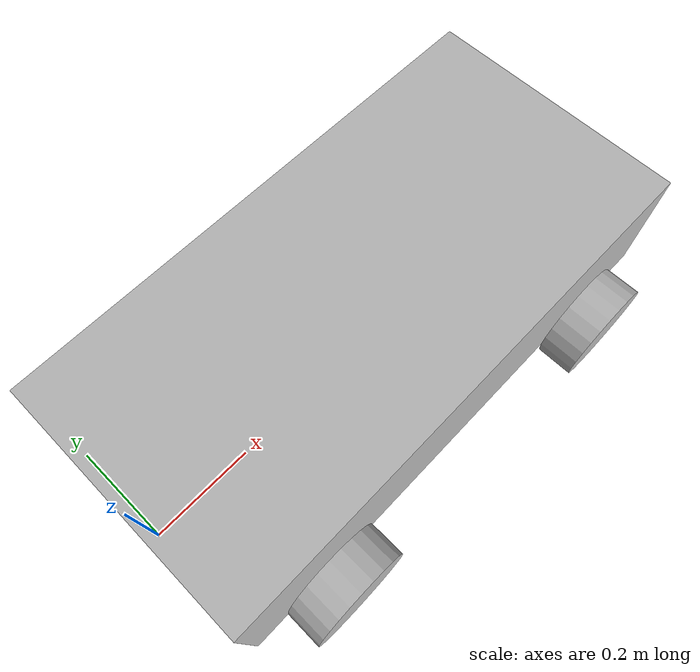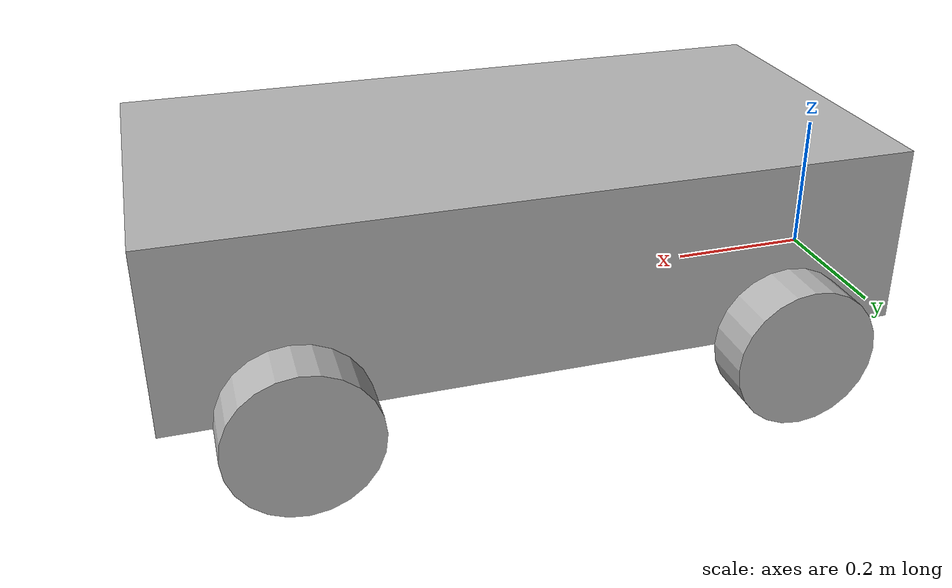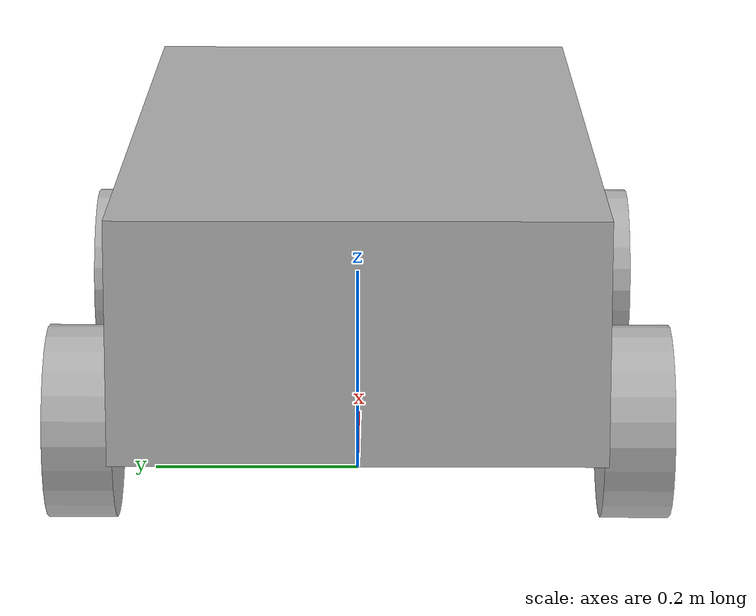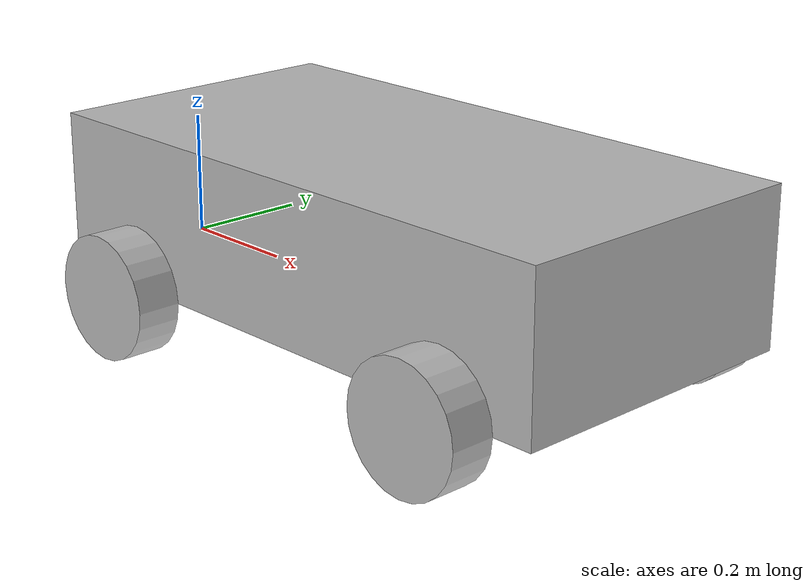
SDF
<sdf version='1.11'>
  <model name='ekalavya'>
    <link name='base_link'>
      <inertial>
        <pose>0.5 0 0.125 0 0 0</pose>
        <mass>1</mass>
        <inertia>
          <ixx>0.026041666666666661</ixx>
          <ixy>0</ixy>
          <ixz>0</ixz>
          <iyy>0.08854166666666663</iyy>
          <iyz>0</iyz>
          <izz>0.1041666666666666</izz>
        </inertia>
      </inertial>
      <collision name='base_link_fixed_joint_lump__chassis_link_collision'>
        <pose>0.5 0 0.125 0 0 0</pose>
        <geometry>
          <box>
            <size>1 0.5 0.25</size>
          </box>
        </geometry>
      </collision>
      <visual name='base_link_fixed_joint_lump__chassis_link_visual'>
        <pose>0.5 0 0.125 0 0 0</pose>
        <geometry>
          <box>
            <size>1 0.5 0.25</size>
          </box>
        </geometry>
      </visual>
    </link>
    <joint name='chassis_to_left_wheel1_joint' type='revolute'>
      <pose relative_to='base_link'>0.83333333333333326 0.2857142857142857 0 -1.5707963267948959 0 0</pose>
      <parent>base_link</parent>
      <child>left_wheel1_link</child>
      <axis>
        <xyz>0 0 1</xyz>
        <limit>
          <lower>-inf</lower>
          <upper>inf</upper>
        </limit>
        <dynamics>
          <spring_reference>0</spring_reference>
          <spring_stiffness>0</spring_stiffness>
        </dynamics>
      </axis>
    </joint>
    <link name='left_wheel1_link'>
      <pose relative_to='chassis_to_left_wheel1_joint'>0 0 0 0 0 0</pose>
      <inertial>
        <pose>0 0 0 0 0 0</pose>
        <mass>0.25</mass>
        <inertia>
          <ixx>0.00073129251700680274</ixx>
          <ixy>0</ixy>
          <ixz>0</ixz>
          <iyy>0.00073129251700680274</iyy>
          <iyz>0</iyz>
          <izz>0.00125</izz>
        </inertia>
      </inertial>
      <collision name='left_wheel1_link_collision'>
        <pose>0 0 0 0 0 0</pose>
        <geometry>
          <cylinder>
            <length>0.071428571428571425</length>
            <radius>0.10000000000000001</radius>
          </cylinder>
        </geometry>
      </collision>
      <visual name='left_wheel1_link_visual'>
        <pose>0 0 0 0 0 0</pose>
        <geometry>
          <cylinder>
            <length>0.071428571428571425</length>
            <radius>0.10000000000000001</radius>
          </cylinder>
        </geometry>
      </visual>
    </link>
    <joint name='chassis_to_left_wheel2_joint' type='revolute'>
      <pose relative_to='base_link'>0.16666666666666671 0.2857142857142857 0 -1.5707963267948959 0 0</pose>
      <parent>base_link</parent>
      <child>left_wheel2_link</child>
      <axis>
        <xyz>0 0 1</xyz>
        <limit>
          <lower>-inf</lower>
          <upper>inf</upper>
        </limit>
        <dynamics>
          <spring_reference>0</spring_reference>
          <spring_stiffness>0</spring_stiffness>
        </dynamics>
      </axis>
    </joint>
    <link name='left_wheel2_link'>
      <pose relative_to='chassis_to_left_wheel2_joint'>0 0 0 0 0 0</pose>
      <inertial>
        <pose>0 0 0 0 0 0</pose>
        <mass>0.25</mass>
        <inertia>
          <ixx>0.00073129251700680274</ixx>
          <ixy>0</ixy>
          <ixz>0</ixz>
          <iyy>0.00073129251700680274</iyy>
          <iyz>0</iyz>
          <izz>0.00125</izz>
        </inertia>
      </inertial>
      <collision name='left_wheel2_link_collision'>
        <pose>0 0 0 0 0 0</pose>
        <geometry>
          <cylinder>
            <length>0.071428571428571425</length>
            <radius>0.10000000000000001</radius>
          </cylinder>
        </geometry>
      </collision>
      <visual name='left_wheel2_link_visual'>
        <pose>0 0 0 0 0 0</pose>
        <geometry>
          <cylinder>
            <length>0.071428571428571425</length>
            <radius>0.10000000000000001</radius>
          </cylinder>
        </geometry>
      </visual>
    </link>
    <joint name='chassis_to_right_wheel1_joint' type='revolute'>
      <pose relative_to='base_link'>0.83333333333333326 -0.2857142857142857 0 1.5707963267948959 0 0</pose>
      <parent>base_link</parent>
      <child>right_wheel1_link</child>
      <axis>
        <xyz>0 0 -1</xyz>
        <limit>
          <lower>-inf</lower>
          <upper>inf</upper>
        </limit>
        <dynamics>
          <spring_reference>0</spring_reference>
          <spring_stiffness>0</spring_stiffness>
        </dynamics>
      </axis>
    </joint>
    <link name='right_wheel1_link'>
      <pose relative_to='chassis_to_right_wheel1_joint'>0 0 0 0 0 0</pose>
      <inertial>
        <pose>0 0 0 0 0 0</pose>
        <mass>0.25</mass>
        <inertia>
          <ixx>0.00073129251700680274</ixx>
          <ixy>0</ixy>
          <ixz>0</ixz>
          <iyy>0.00073129251700680274</iyy>
          <iyz>0</iyz>
          <izz>0.00125</izz>
        </inertia>
      </inertial>
      <collision name='right_wheel1_link_collision'>
        <pose>0 0 0 0 0 0</pose>
        <geometry>
          <cylinder>
            <length>0.071428571428571425</length>
            <radius>0.10000000000000001</radius>
          </cylinder>
        </geometry>
      </collision>
      <visual name='right_wheel1_link_visual'>
        <pose>0 0 0 0 0 0</pose>
        <geometry>
          <cylinder>
            <length>0.071428571428571425</length>
            <radius>0.10000000000000001</radius>
          </cylinder>
        </geometry>
      </visual>
    </link>
    <joint name='chassis_to_right_wheel2_joint' type='revolute'>
      <pose relative_to='base_link'>0.16666666666666671 -0.2857142857142857 0 1.5707963267948959 0 0</pose>
      <parent>base_link</parent>
      <child>right_wheel2_link</child>
      <axis>
        <xyz>0 0 -1</xyz>
        <limit>
          <lower>-inf</lower>
          <upper>inf</upper>
        </limit>
        <dynamics>
          <spring_reference>0</spring_reference>
          <spring_stiffness>0</spring_stiffness>
        </dynamics>
      </axis>
    </joint>
    <link name='right_wheel2_link'>
      <pose relative_to='chassis_to_right_wheel2_joint'>0 0 0 0 0 0</pose>
      <inertial>
        <pose>0 0 0 0 0 0</pose>
        <mass>0.25</mass>
        <inertia>
          <ixx>0.00073129251700680274</ixx>
          <ixy>0</ixy>
          <ixz>0</ixz>
          <iyy>0.00073129251700680274</iyy>
          <iyz>0</iyz>
          <izz>0.00125</izz>
        </inertia>
      </inertial>
      <collision name='right_wheel2_link_collision'>
        <pose>0 0 0 0 0 0</pose>
        <geometry>
          <cylinder>
            <length>0.071428571428571425</length>
            <radius>0.10000000000000001</radius>
          </cylinder>
        </geometry>
      </collision>
      <visual name='right_wheel2_link_visual'>
        <pose>0 0 0 0 0 0</pose>
        <geometry>
          <cylinder>
            <length>0.071428571428571425</length>
            <radius>0.10000000000000001</radius>
          </cylinder>
        </geometry>
      </visual>
    </link>
    <frame name='base_to_chassis_joint' attached_to='base_link'>
      <pose>0.5 0 0.125 0 0 0</pose>
    </frame>
    <frame name='chassis_link' attached_to='base_to_chassis_joint'>
      <pose>0 0 0 0 0 0</pose>
    </frame>
  </model>
</sdf>
